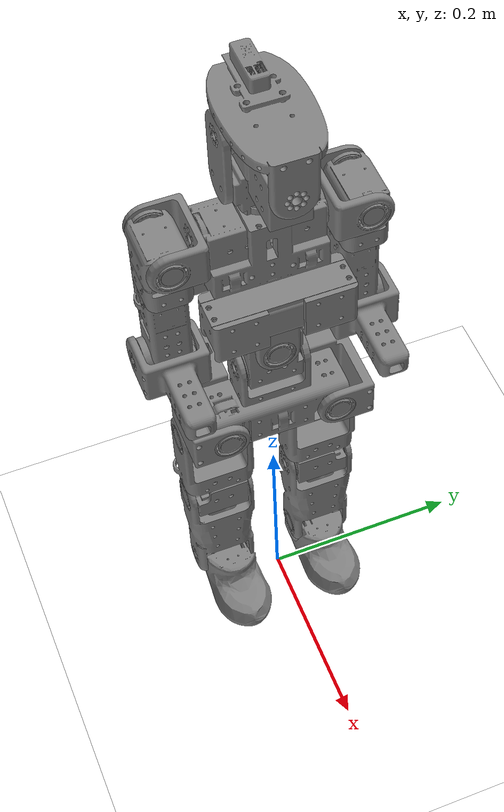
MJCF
<?xml version="1.0" ?>
<mujoco model="ImportedModel">
  <compiler angle="radian" meshdir="assets" autolimits="true"/>
  <asset>
    <mesh name="head_platform" file="head_platform.stl" />
    <mesh name="hip_mid_section" file="hip_mid_section.stl" />
    <mesh name="torso" file="torso.stl" />
    <mesh name="torso_upper_handle" file="torso_upper_handle.stl" />
    <mesh name="r_upper_handle" file="r_upper_handle.stl" />
    <mesh name="r_shoulder_x" file="r_shoulder_x.stl" />
    <mesh name="r_arm_mid_part" file="r_arm_mid_part.stl" />
    <mesh name="r_elbow_part" file="r_elbow_part.stl" />
    <mesh name="l_upper_handle" file="l_upper_handle.stl" />
    <mesh name="l_shoulder_x" file="l_shoulder_x.stl" />
    <mesh name="l_arm_mid_part" file="l_arm_mid_part.stl" />
    <mesh name="l_elbow_part" file="l_elbow_part.stl" />
    <mesh name="l_hip_z" file="l_hip_z.stl" />
    <mesh name="r_hip_z" file="r_hip_z.stl" />
    <mesh name="l_hip_y" file="l_hip_y.stl" />
    <mesh name="l_thigh" file="l_thigh.stl" />
    <mesh name="left_shin_part" file="left_shin_part.stl" />
    <mesh name="left_foot" file="left_foot.stl" />
    <mesh name="r_hip_y" file="r_hip_y.stl" />
    <mesh name="r_thigh" file="r_thigh.stl" />
    <mesh name="right_shin_part" file="right_shin_part.stl" />
    <mesh name="right_foot" file="right_foot.stl" />
    <mesh name="chin" file="chin.stl" />
    <mesh name="neck" file="neck.stl" />
    <mesh name="chest" file="chest.stl" />
  </asset>
  <default>
    <site group="5" type="sphere" />
    <default class="servo_xm540">
      <motor forcerange="-10 10" ctrlrange="-10 10" ctrllimited="true" />
    </default>
    <default class="servo_xm430">
      <motor forcerange="-5 5" ctrlrange="-5 5" ctrllimited="true" />
    </default>
    <geom type="mesh" contype="0" conaffinity="0" friction="0.6" />
    <default class="visual">
      <geom type="mesh" contype="0" conaffinity="0" group="2" />
    </default>
    <default class="collision">
      <geom type="capsule" contype="1" conaffinity="1" group="3" />
    </default>
  </default>
  <worldbody>
    <body name="hip_mid_section" pos="0 0 0.301207" quat="1 0 0 0">
      <site name="hip_imu" />
      <joint name="root_free_joint" type="free" />
      <camera name="tracking" pos="1.2 -0.8 0.4" mode="targetbody" target="hip_mid_section" />
      <inertial mass="0.5938" pos="0.00444971 0.000527454 0" fullinertia="0.00125364 0.000383839 0.00115789 1.05143e-06 2.59967e-05 -1.27551e-05" />
      <geom name="hip_mid_section_visual" mesh="hip_mid_section" class="visual" />
      <geom name="hip_mid_section_collision_1" type="capsule" size="0.03" fromto="0.005 -0.065 -0.005 0.005 0.065 -0.005" class="collision"/>
      <geom name="hip_mid_section_collision_2" type="capsule" size="0.0325" fromto="-0.003 -0.01 0.045 -0.003 0.01 0.045" class="collision"/>
      <site type="sphere" size="0.02" rgba="1 0 0 1" name="left_hip_site" pos="-0.02429 -0.03 0.0" />
      <site type="sphere" size="0.02" rgba="1 0 0 1" name="right_hip_site" pos="-0.02429 0.03 0.0" />
      <body name="l_hip_z" pos="0.038 0.0563 -0.00580234" quat="1 0 0 0">
        <inertial mass="0.2642" pos="-0.0841984 0.00365625 -0.00073521" fullinertia="0.000111985 0.000278902 0.000282001 -4.9616e-05 1.13634e-06 -7.01029e-07" />
        <geom name="l_hip_z_visual" mesh="l_hip_z" class="visual" />
        <geom name="l_hip_z_collision" type="capsule" size="0.0295939" fromto="-0.1 0.0 -0.001375 -0.08 0.0 -0.001375" class="collision" />
        <body name="l_hip_y" pos="-0.08075 7.10543e-18 -0.0285" quat="1 0 0 0">
          <inertial mass="0.2424" pos="0.0041117 0.000862977 -0.0222392" fullinertia="9.87699e-05 0.000109087 0.000145097 -1.1014e-05 5.5971e-07 1.17217e-07" />
          <geom name="l_hip_y_visual" mesh="l_hip_y" class="visual" />
          <body name="l_thigh" pos="0.0185 0.03505 -0.0228" quat="1 0 0 0">
            <inertial mass="0.2974" pos="3.062e-05 -0.0362906 -0.076016" fullinertia="0.000375581 0.000287283 0.000164701 -2.52533e-07 -7.28249e-08 3.2003e-05" />
            <geom name="l_thigh_visual" mesh="l_thigh" class="visual" />
            <geom name="l_thigh_collision" type="capsule" size="0.0375" fromto="-0.00202785 -0.035 -0.08 -0.00202785 -0.035 -0.02" class="collision" />
            <body name="left_shin_part" pos="-7.6294e-10 -0.001225 -0.10095" quat="1 0 0 0">
              <inertial mass="0.2094" pos="-2.52093e-07 -0.0331842 -0.0715727" fullinertia="0.000410519 0.000323401 0.000157279 -1.01849e-09 -1.56438e-09 3.57645e-05" />
              <geom name="left_shin_part_visual" mesh="left_shin_part" class="visual" />
              <geom name="left_shin_part_collision" type="capsule" size="0.035" fromto="0.0 -0.034775 -0.1 0.0 -0.034775 -0.05" class="collision" />
              <site type="sphere" size="0.02" rgba="1 0 0 1" name="left_knee_site" pos="0.0 -0.034775 0.0" />
              <body name="left_foot" pos="-4.95955e-09 -0.004 -0.115905" quat="1 0 0 0">
                <inertial mass="0.203" pos="0.0209862 -0.0337848 -0.00819084" fullinertia="6.28975e-05 0.000186749 0.000194238 3.8743e-07 2.20549e-05 6.43728e-08" />
                <geom name="left_foot_visual" mesh="left_foot" class="visual" />
                <geom name="left_foot_collision_1" type="capsule" size="0.005" fromto="-0.024 -0.0339364 -0.0225 0.09 -0.0339364 -0.0225" class="collision"/>
                <geom name="left_foot_collision_2" type="capsule" size="0.005" fromto="-0.024 -0.029 -0.0225 0.0875 -0.029 -0.0225" class="collision"/>
                <geom name="left_foot_collision_3" type="capsule" size="0.005" fromto="-0.024 -0.039 -0.0225 0.0875 -0.039 -0.0225" class="collision"/>
                <geom name="left_foot_collision_4" type="capsule" size="0.005" fromto="-0.024 -0.024 -0.0225 0.085 -0.024 -0.0225" class="collision"/>
                <geom name="left_foot_collision_5" type="capsule" size="0.005" fromto="-0.024 -0.044 -0.0225 0.085 -0.044 -0.0225" class="collision"/>
                <geom name="left_foot_collision_6" type="capsule" size="0.005" fromto="-0.024 -0.019 -0.0225 0.0825 -0.019 -0.0225" class="collision"/>
                <geom name="left_foot_collision_7" type="capsule" size="0.005" fromto="-0.024 -0.049 -0.0225 0.0825 -0.049 -0.0225" class="collision"/>
                <geom name="left_foot_collision_8" type="capsule" size="0.005" fromto="-0.024 -0.014 -0.0225 0.075 -0.014 -0.0225" class="collision"/>
                <geom name="left_foot_collision_9" type="capsule" size="0.005" fromto="-0.024 -0.054 -0.0225 0.075 -0.054 -0.0225" class="collision"/>
                <site type="sphere" size="0.02" rgba="1 0 0 1" name="left_foot" pos="0.0 -0.031 0.0" />
                <site type="sphere" size="0.02" rgba="1 0 0 1" name="left_toe_site" pos="0.075 -0.06 -0.01725" />
                <joint name="left_ankle_joint" axis="0 1 0" range="-0.5 1.5" />
              </body>
              <joint name="left_knee_joint" axis="0 1 0" range="-0.5 1.5" />
            </body>
            <joint name="left_hip_pitch_joint" axis="0 1 0" range="-1.6 1.6" />
          </body>
          <joint name="left_hip_yaw_joint" axis="0 0 1" range="-0.7 1.6" />
        </body>
        <joint name="left_hip_roll_joint" axis="1 0 0" range="-0.2 0.9" />
      </body>
      <body name="r_hip_z" pos="0.038 -0.0563 -0.00580234" quat="1 0 0 0">
        <inertial mass="0.2642" pos="-0.0841994 -0.00365474 -0.000735174" fullinertia="0.000111986 0.000278905 0.000282006 4.96138e-05 1.12968e-06 7.11392e-07" />
        <geom name="r_hip_z_visual" mesh="r_hip_z" class="visual" />
        <geom name="r_hip_z_collision" type="capsule" size="0.0295939" fromto="-0.1 0.0 -0.001375 -0.08 0.0 -0.001375" class="collision" />
        <body name="r_hip_y" pos="-0.08075 -9.23706e-17 -0.0285" quat="1 0 0 0">
          <inertial mass="0.2424" pos="0.00411158 -0.000848113 -0.0222393" fullinertia="9.89653e-05 0.000109087 0.000145293 1.0963e-05 5.59491e-07 -1.14639e-07" />
          <geom name="r_hip_y_visual" mesh="r_hip_y" class="visual" />
          <body name="r_thigh" pos="0.0185 -0.03505 -0.0228" quat="1 0 0 0">
            <inertial mass="0.2974" pos="2.34214e-05 0.036284 -0.0760047" fullinertia="0.00037532 0.000286845 0.000164601 1.59463e-07 -9.63979e-08 -3.20237e-05" />
            <geom name="r_thigh_visual" mesh="r_thigh" class="visual" />
            <geom name="r_thigh_collision" type="capsule" size="0.0375" fromto="-0.00202785 0.035 -0.08 -0.00202785 0.035 -0.02" class="collision" />
            <body name="right_shin_part" pos="-4.00008e-05 0.001185 -0.10095" quat="1 0 0 0">
              <inertial mass="0.2094" pos="1.32723e-06 0.0331842 -0.0715842" fullinertia="0.00041072 0.000323618 0.000157297 -8.7962e-09 9.36249e-09 -3.56945e-05" />
              <geom name="right_shin_part_visual" mesh="right_shin_part" class="visual" />
              <geom name="right_shin_part_collision" type="capsule" size="0.035" fromto="0.0 0.034775 -0.1 0.0 0.034775 -0.05" class="collision" />
              <site type="sphere" size="0.02" rgba="1 0 0 1" name="right_knee_site" pos="0.0 0.034775 0.0" />
              <body name="right_foot" pos="4.95955e-09 0.004 -0.115905" quat="1 0 0 0">
                <inertial mass="0.203" pos="0.0209862 0.0337848 -0.00819084" fullinertia="6.28975e-05 0.000186749 0.000194238 -3.8743e-07 2.20549e-05 -6.43728e-08" />
                <geom name="right_foot_visual" mesh="right_foot" class="visual" />
                <geom name="right_foot_collision_1" type="capsule" size="0.005" fromto="-0.024 0.0339364 -0.0225 0.09 0.0339364 -0.0225" class="collision"/>
                <geom name="right_foot_collision_2" type="capsule" size="0.005" fromto="-0.024 0.029 -0.0225 0.0875 0.029 -0.0225" class="collision"/>
                <geom name="right_foot_collision_3" type="capsule" size="0.005" fromto="-0.024 0.039 -0.0225 0.0875 0.039 -0.0225" class="collision"/>
                <geom name="right_foot_collision_4" type="capsule" size="0.005" fromto="-0.024 0.024 -0.0225 0.085 0.024 -0.0225" class="collision"/>
                <geom name="right_foot_collision_5" type="capsule" size="0.005" fromto="-0.024 0.044 -0.0225 0.085 0.044 -0.0225" class="collision"/>
                <geom name="right_foot_collision_6" type="capsule" size="0.005" fromto="-0.024 0.019 -0.0225 0.0825 0.019 -0.0225" class="collision"/>
                <geom name="right_foot_collision_7" type="capsule" size="0.005" fromto="-0.024 0.049 -0.0225 0.0825 0.049 -0.0225" class="collision"/>
                <geom name="right_foot_collision_8" type="capsule" size="0.005" fromto="-0.024 0.014 -0.0225 0.075 0.014 -0.0225" class="collision"/>
                <geom name="right_foot_collision_9" type="capsule" size="0.005" fromto="-0.024 0.054 -0.0225 0.075 0.054 -0.0225" class="collision"/>
                <site type="sphere" size="0.02" rgba="1 0 0 1" name="right_foot" pos="0.0 0.031 0.0" />
                <site type="sphere" size="0.02" rgba="1 0 0 1" name="right_toe_site" pos="0.075 0.06 -0.01725" />
                <joint name="right_ankle_joint" axis="0 1 0" range="-0.5 1.5" />
              </body>
              <joint name="right_knee_joint" axis="0 1 0" range="-0.5 1.5" />
            </body>
            <joint name="right_hip_pitch_joint" axis="0 1 0" range="-1.6 1.6" />
          </body>
          <joint name="right_hip_yaw_joint" axis="0 0 1" range="-1.6 0.7" />
        </body>
        <joint name="right_hip_roll_joint" axis="1 0 0" range="-0.9 0.2" />
      </body>
      <body name="torso" pos="-0.003 -0.03505 0.0549477" quat="1 0 0 0">
        <inertial mass="0.4594" pos="-0.0253705 0.0348555 0.019038" fullinertia="0.000229868 0.000627108 0.000551815 3.05422e-06 -5.38703e-07 2.42542e-06" />
        <geom name="torso_visual" mesh="torso" class="visual" />
        <body name="torso_upper_handle" pos="0.0298 0.03505 0.03605" quat="1 0 0 0">
          <inertial mass="0.0862" pos="-0.0639539 2.37147e-07 0.02734" fullinertia="3.4083e-05 0.000177213 0.000168265 -2.53181e-10 -1.91332e-05 -2.81839e-10" />
          <geom name="torso_upper_handle_visual" mesh="torso_upper_handle" class="visual" />
          <geom name="torso_upper_handle_collision" type="capsule" size="0.03" fromto="-0.1 0.0 0.011975 -0.02 0.0 0.011975" class="collision" />
          <body name="chest" pos="-0.0248 -1.10981e-16 0.0412" quat="1 0 0 0">
            <site name="chest_imu" />
            <inertial mass="1.5536" pos="-0.023388 0.000523029 0.0479463" fullinertia="0.00326163 0.00332989 0.00358524 -1.84983e-06 -7.5718e-05 2.09468e-05" />
            <geom name="chest_visual" mesh="chest" class="visual" />
            <geom name="chest_collision" type="sphere" size="0.065" pos="-0.01955 0.0 0.062125" class="collision"/>
            <body name="l_upper_handle" pos="-0.01555 0.05695 0.099" quat="1 0 0 0">
              <inertial mass="0.0824" pos="0.00208293 0.0206581 5.3218e-06" fullinertia="3.45104e-05 7.32246e-05 8.59869e-05 -1.73035e-06 1.22635e-08 -4.98685e-09" />
              <geom name="l_upper_handle_visual" mesh="l_upper_handle" class="visual" />
              <site type="sphere" size="0.02" rgba="1 0 0 1" name="left_shoulder_site" pos="0.0 0.0 0.0" />
              <body name="l_shoulder_x" pos="0.03575 0.03417 -1.13687e-15" quat="1 0 0 0">
                <inertial mass="0.2382" pos="-0.0351961 -2.35527e-09 -0.0201831" fullinertia="0.00012531 0.000142725 7.61443e-05 -1.03008e-11 -1.98882e-06 5.73032e-12" />
                <geom name="l_shoulder_x_visual" mesh="l_shoulder_x" class="visual" />
                <geom name="l_shoulder_x_collision" type="capsule" size="0.0275" fromto="-0.035 0.0025 -0.03 -0.035 0.0025 -0.01" class="collision" />
                <body name="l_arm_mid_part" pos="-0.03505 1.39266e-15 -0.04975" quat="1 0 0 0">
                  <inertial mass="0.2614" pos="-0.00968615 -0.00032637 -0.0600067" fullinertia="0.000311894 0.000299782 8.55765e-05 6.76435e-08 1.50954e-05 -3.99224e-06" />
                  <geom name="l_arm_mid_part_visual" mesh="l_arm_mid_part" class="visual" />
                  <geom name="l_arm_mid_part_collision" type="capsule" size="0.0275" fromto="-0.01125 0.0 -0.085 -0.01125 0.0 -0.025" class="collision" />
                  <body name="l_elbow_part" pos="-0.00805 0.0341 -0.09385" quat="1 0 0 0">
                    <inertial mass="0.081" pos="0.039753 -0.0285485 -1.22748e-11" fullinertia="3.71542e-05 8.13264e-05 0.000100753 1.04013e-05 -1.01419e-13 6.14273e-13" />
                    <geom name="l_elbow_part_visual" mesh="l_elbow_part" class="visual" />
                    <geom name="l_elbow_part_collision" type="capsule" size="0.02" fromto="0.045 -0.032025 0.0 0.0825 -0.032025 0.0" class="collision"/>
                    <site type="sphere" size="0.02" rgba="1 0 0 1" name="left_elbow_site" pos="0.0 -0.032 0.0" />
                    <site type="sphere" size="0.02" rgba="1 0 0 1" name="left_hand_site" pos="0.15 -0.032 0.0" />
                    <body name="left_hand" pos="0.15 -0.032 0.0">
                      <geom name="left_hand" type="sphere" size=".0001" density="0" />
                    </body>
                    <joint name="left_elbow_joint" axis="0 1 0" range="-0.4 3.0" />
                  </body>
                  <joint name="left_shoulder_yaw_joint" axis="0 0 1" range="-3.0 3.0" />
                </body>
                <joint name="left_shoulder_roll_joint" axis="1 0 0" range="-0.8 3.0" />
              </body>
              <joint name="left_shoulder_pitch_joint" axis="0 1 0" range="-3.0 3.0" />
            </body>
            <body name="neck" pos="-0.01555 -3.86181e-16 0.11875" quat="1 0 0 0">
              <inertial mass="0.2064" pos="-0.0120542 -0.00407904 0.0418112" fullinertia="0.000213142 0.000165157 0.000111459 7.26336e-08 -5.50255e-07 4.69218e-09" />
              <geom name="neck_visual" mesh="neck" class="visual" />
              <body name="chin" pos="-0.012 0.03205 0.07702" quat="1 0 0 0">
                <inertial mass="0.2804" pos="0.0339948 -0.030023 -0.00520456" fullinertia="8.32235e-05 0.00039706 0.000383823 2.08344e-06 3.33954e-05 -2.64155e-07" />
                <geom name="chin_visual" mesh="chin" class="visual" />
                <geom name="chin_collision" type="capsule" size="0.03" fromto="-0.01 -0.03 -0.01 0.07 -0.03 -0.01" class="collision" />
                <body name="head_platform" pos="0.09615 -0.03005 0.00305" quat="1 0 0 0">
                  <inertial mass="0.145" pos="-0.0644625 -1.28908e-07 0.0355706" fullinertia="7.96805e-05 0.000260843 0.000275358 -1.10501e-08 2.49054e-05 -5.15654e-09" />
                  <geom name="head_platform_visual" mesh="head_platform" class="visual" />
                  <joint name="neck_roll_joint" axis="1 0 0" range="-0.5 0.5" />
                </body>
                <joint name="neck_pitch_joint" axis="0 1 0" range="-1.0 0.2" />
              </body>
              <joint name="neck_yaw_joint" axis="0 0 1" range="-2.0 2.0" />
            </body>
            <body name="r_upper_handle" pos="-0.01555 -0.05695 0.099" quat="1 0 0 0">
              <inertial mass="0.0824" pos="0.00208294 -0.0206623 -4.81081e-07" fullinertia="3.45232e-05 7.32255e-05 8.59992e-05 1.7242e-06 -2.70455e-10 -1.6684e-09" />
              <geom name="r_upper_handle_visual" mesh="r_upper_handle" class="visual" />
              <site type="sphere" size="0.02" rgba="1 0 0 1" name="right_shoulder_site" pos="0.0 0.0 0.0" />
              <body name="r_shoulder_x" pos="0.03575 -0.03417 -1.02318e-15" quat="1 0 0 0">
                <inertial mass="0.2382" pos="-0.0351961 1.29516e-08 -0.0201831" fullinertia="0.00012531 0.000142725 7.61444e-05 -4.65765e-12 -1.98905e-06 8.26316e-11" />
                <geom name="r_shoulder_x_visual" mesh="r_shoulder_x" class="visual" />
                <geom name="r_shoulder_x_collision" type="capsule" size="0.0275" fromto="-0.035 -0.0025 -0.03 -0.035 -0.0025 -0.01" class="collision" />
                <body name="r_arm_mid_part" pos="-0.03505 2.27374e-16 -0.05075" quat="1 0 0 0">
                  <inertial mass="0.2614" pos="-0.00968666 0.000394953 -0.059281" fullinertia="0.000314126 0.000302008 8.5583e-05 -9.01808e-08 1.51579e-05 4.28571e-06" />
                  <geom name="r_arm_mid_part_visual" mesh="r_arm_mid_part" class="visual" />
                  <geom name="r_arm_mid_part_collision" type="capsule" size="0.0275" fromto="-0.01125 0.0 -0.085 -0.01125 0.0 -0.025" class="collision" />
                  <body name="r_elbow_part" pos="-0.00805 -0.03405 -0.09325" quat="1 0 0 0">
                    <inertial mass="0.081" pos="0.039753 0.0285485 -1.22756e-11" fullinertia="3.71542e-05 8.13264e-05 0.000100753 -1.04013e-05 -1.01418e-13 -6.14273e-13" />
                    <geom name="r_elbow_part_visual" mesh="r_elbow_part" class="visual" />
                    <geom name="r_elbow_part_collision" type="capsule" size="0.02" fromto="0.045 0.032025 0.0 0.0825 0.032025 0.0" class="collision"/>
                    <site type="sphere" size="0.02" rgba="1 0 0 1" name="right_hand_site" pos="0.15 0.032 0.0" />
                    <body name="right_hand" pos="0.15 0.032 0.0">
                      <geom name="right_hand" type="sphere" size=".0001" density="0" />
                    </body>
                    <joint name="right_elbow_joint" axis="0 1 0" range="-0.4 3.0" />
                  </body>
                  <joint name="right_shoulder_yaw_joint" axis="0 0 1" range="-3.0 3.0" />
                </body>
                <joint name="right_shoulder_roll_joint" axis="1 0 0" range="-3.0 0.8" />
              </body>
              <joint name="right_shoulder_pitch_joint" axis="0 1 0" range="-3.0 3.0" />
            </body>
            <joint name="torso_yaw_joint" axis="0 0 1" range="-1.07 1.07" />
          </body>
          <joint name="torso_roll_joint" axis="1 0 0" range="-1.0 1.2" />
        </body>
        <joint name="torso_pitch_joint" axis="0 1 0" range="-0.45 1.4" />
      </body>
    </body>
  </worldbody>

  <contact>
    <exclude body1="hip_mid_section" body2="torso" />
    <exclude body1="hip_mid_section" body2="torso_upper_handle" />
    <exclude body1="torso" body2="torso_upper_handle" />
    <exclude body1="chest" body2="neck" />
    <exclude body1="neck" body2="chin" />
    <exclude body1="chin" body2="head_platform" />
    <exclude body1="neck" body2="head_platform" />
    <exclude body1="l_thigh" body2="l_hip_z" />
    <exclude body1="r_thigh" body2="r_hip_z" />
    <exclude body1="l_thigh" body2="hip_mid_section" />
    <exclude body1="r_thigh" body2="hip_mid_section" />
  </contact>

  <sensor>
    <frameangvel name="chest_gyro" objtype="site" objname="chest_imu"/>
    <frameangvel name="hip_gyro" objtype="site" objname="hip_imu"/>
  </sensor>

  <statistic center="0 0 0.1" extent="0.8"/>

  <visual>
    <headlight diffuse=".8 .8 .8" ambient=".2 .2 .2" specular="1 1 1"/>
    <rgba force="1 0 0 1"/>
    <global azimuth="120" elevation="-20"/>
    <map force="0.01"/>
    <scale forcewidth="0.3" contactwidth="0.5" contactheight="0.2"/>
    <quality shadowsize="8192"/>
  </visual>

  <asset>
    <texture type="skybox" builtin="gradient" rgb1="1 1 1" rgb2="1 1 1" width="800" height="800"/>
    <texture type="2d" name="groundplane" builtin="checker" mark="edge" rgb1="1 1 1" rgb2="1 1 1"
      markrgb="0 0 0" width="300" height="300"/>
    <material name="groundplane" texture="groundplane" texuniform="true" texrepeat="5 5" reflectance="0"/>
  </asset>

  <worldbody>
    <geom name="floor" size="0 0 0.01" pos="0 0 0.0" type="plane" material="groundplane" contype="1" conaffinity="0"/>
  </worldbody>

  <actuator>
    <position name="left_hip_roll"          joint="left_hip_roll_joint"          class="servo_xm540"/>
    <position name="left_hip_yaw"           joint="left_hip_yaw_joint"           class="servo_xm540"/>
    <position name="left_hip_pitch"         joint="left_hip_pitch_joint"         class="servo_xm540"/>
    <position name="left_knee"              joint="left_knee_joint"              class="servo_xm540"/>
    <position name="left_ankle"             joint="left_ankle_joint"             class="servo_xm430"/>
    <position name="right_hip_roll"         joint="right_hip_roll_joint"         class="servo_xm540"/>
    <position name="right_hip_yaw"          joint="right_hip_yaw_joint"          class="servo_xm540"/>
    <position name="right_hip_pitch"        joint="right_hip_pitch_joint"        class="servo_xm540"/>
    <position name="right_knee"             joint="right_knee_joint"             class="servo_xm540"/>
    <position name="right_ankle"            joint="right_ankle_joint"            class="servo_xm430"/>
    <position name="torso_pitch"            joint="torso_pitch_joint"            class="servo_xm540"/>
    <position name="torso_roll"             joint="torso_roll_joint"             class="servo_xm540"/>
    <position name="torso_yaw"              joint="torso_yaw_joint"              class="servo_xm540"/>
    <position name="left_shoulder_pitch"    joint="left_shoulder_pitch_joint"    class="servo_xm540"/>
    <position name="left_shoulder_roll"     joint="left_shoulder_roll_joint"     class="servo_xm540"/>
    <position name="left_shoulder_yaw"      joint="left_shoulder_yaw_joint"      class="servo_xm430"/>
    <position name="left_elbow"             joint="left_elbow_joint"             class="servo_xm430"/>
    <position name="neck_yaw"               joint="neck_yaw_joint"               class="servo_xm430"/>
    <position name="neck_pitch"             joint="neck_pitch_joint"             class="servo_xm430"/>
    <position name="neck_roll"              joint="neck_roll_joint"              class="servo_xm430"/>
    <position name="right_shoulder_pitch"   joint="right_shoulder_pitch_joint"   class="servo_xm540"/>
    <position name="right_shoulder_roll"    joint="right_shoulder_roll_joint"    class="servo_xm540"/>
    <position name="right_shoulder_yaw"     joint="right_shoulder_yaw_joint"     class="servo_xm430"/>
    <position name="right_elbow"            joint="right_elbow_joint"            class="servo_xm430"/>
  </actuator>
</mujoco>
